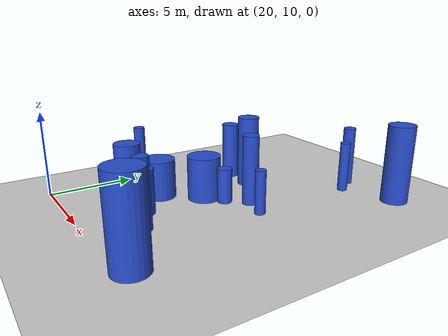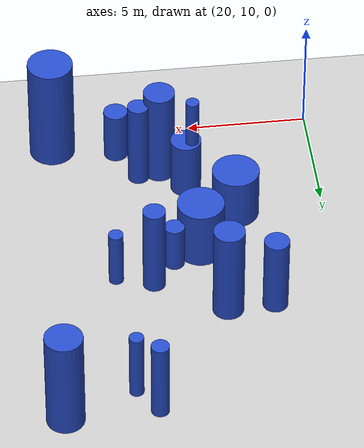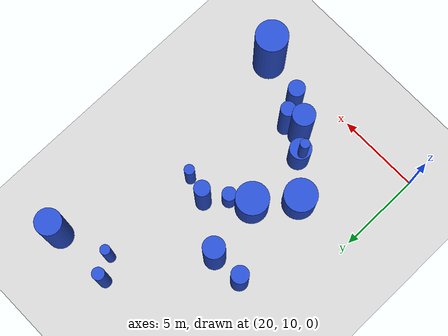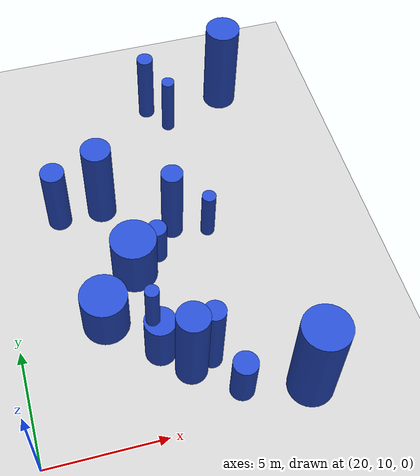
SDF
<sdf version="1.6">
 <world name="default">
  <model name="ground_plane">
   <static>1</static>
   <link name="link">
    <collision name="collision">
     <geometry><plane><normal>0 0 1</normal><size>100 100</size></plane></geometry>
     <surface><friction><ode><mu>100</mu><mu2>50</mu2></ode></friction></surface>
    </collision>
    <visual name="visual">
     <cast_shadows>0</cast_shadows>
     <geometry><plane><normal>0 0 1</normal><size>100 100</size></plane></geometry>
     <material>
      <script><uri>file://media/materials/scripts/gazebo.material</uri><name>Gazebo/Grey</name></script>
     </material>
    </visual>
   </link>
  </model>
  <model name="22">
   <static>0</static>
   <link name="link">
    <inertial>
     <mass>2</mass>
     <inertia><ixx>3.25357</ixx><ixy>0</ixy><ixz>0</ixz><iyy>3.25357</iyy><iyz>0</iyz><izz>0.409144</izz></inertia>
    </inertial>
    <collision name="collision">
     <geometry><cylinder><length>4.27715</length><radius>0.639643</radius></cylinder></geometry>
     <surface><contact><collide_without_contact>1</collide_without_contact></contact></surface>
    </collision>
    <visual name="visual">
     <geometry><cylinder><length>4.27715</length><radius>0.639643</radius></cylinder></geometry>
     <material>
      <script><uri>file://media/materials/scripts/gazebo.material</uri><name>Gazebo/Blue</name></script>
     </material>
    </visual>
    <gravity>0</gravity>
   </link>
   <pose>24.6833 21.1514 2.13857 0 -0 0</pose>
  </model>
  <model name="26">
   <static>0</static>
   <link name="link">
    <inertial>
     <mass>2</mass>
     <inertia><ixx>1.59022</ixx><ixy>0</ixy><ixz>0</ixz><iyy>1.59022</iyy><iyz>0</iyz><izz>0.948667</izz></inertia>
    </inertial>
    <collision name="collision">
     <geometry><cylinder><length>2.58753</length><radius>0.973996</radius></cylinder></geometry>
     <surface><contact><collide_without_contact>1</collide_without_contact></contact></surface>
    </collision>
    <visual name="visual">
     <geometry><cylinder><length>2.58753</length><radius>0.973996</radius></cylinder></geometry>
     <material>
      <script><uri>file://media/materials/scripts/gazebo.material</uri><name>Gazebo/Blue</name></script>
     </material>
    </visual>
    <gravity>0</gravity>
   </link>
   <pose>25.3744 17.5495 1.29377 0 -0 0</pose>
  </model>
  <model name="30">
   <static>0</static>
   <link name="link">
    <inertial>
     <mass>2</mass>
     <inertia><ixx>1.36472</ixx><ixy>0</ixy><ixz>0</ixz><iyy>1.36472</iyy><iyz>0</iyz><izz>0.964605</izz></inertia>
    </inertial>
    <collision name="collision">
     <geometry><cylinder><length>2.30098</length><radius>0.982143</radius></cylinder></geometry>
     <surface><contact><collide_without_contact>1</collide_without_contact></contact></surface>
    </collision>
    <visual name="visual">
     <geometry><cylinder><length>2.30098</length><radius>0.982143</radius></cylinder></geometry>
     <material>
      <script><uri>file://media/materials/scripts/gazebo.material</uri><name>Gazebo/Blue</name></script>
     </material>
    </visual>
    <gravity>0</gravity>
   </link>
   <pose>23.6658 15.4375 1.15049 0 -0 0</pose>
  </model>
  <model name="35">
   <static>0</static>
   <link name="link">
    <inertial>
     <mass>2</mass>
     <inertia>
      <ixx>1.09122</ixx>
      <ixy>0</ixy>
      <ixz>0</ixz>
      <iyy>1.09122</iyy>
      <iyz>0</iyz>
      <izz>0.0932913</izz>
     </inertia>
    </inertial>
    <collision name="collision">
     <geometry><cylinder><length>2.50348</length><radius>0.305436</radius></cylinder></geometry>
     <surface><contact><collide_without_contact>1</collide_without_contact></contact></surface>
    </collision>
    <visual name="visual">
     <geometry><cylinder><length>2.50348</length><radius>0.305436</radius></cylinder></geometry>
     <material>
      <script><uri>file://media/materials/scripts/gazebo.material</uri><name>Gazebo/Blue</name></script>
     </material>
    </visual>
    <gravity>0</gravity>
   </link>
   <pose>28.9997 18.9307 1.25174 0 -0 0</pose>
  </model>
  <model name="40">
   <static>0</static>
   <link name="link">
    <inertial>
     <mass>2</mass>
     <inertia><ixx>2.77857</ixx><ixy>0</ixy><ixz>0</ixz><iyy>2.77857</iyy><iyz>0</iyz><izz>0.218702</izz></inertia>
    </inertial>
    <collision name="collision">
     <geometry><cylinder><length>4.00191</length><radius>0.467656</radius></cylinder></geometry>
     <surface><contact><collide_without_contact>1</collide_without_contact></contact></surface>
    </collision>
    <visual name="visual">
     <geometry><cylinder><length>4.00191</length><radius>0.467656</radius></cylinder></geometry>
     <material>
      <script><uri>file://media/materials/scripts/gazebo.material</uri><name>Gazebo/Blue</name></script>
     </material>
    </visual>
    <gravity>0</gravity>
   </link>
   <pose>27.4866 19.3515 2.00096 0 -0 0</pose>
  </model>
  <model name="83">
   <static>0</static>
   <link name="link">
    <inertial>
     <mass>2</mass>
     <inertia><ixx>2.13267</ixx><ixy>0</ixy><ixz>0</ixz><iyy>2.13267</iyy><iyz>0</iyz><izz>0.266317</izz></inertia>
    </inertial>
    <collision name="collision">
     <geometry><cylinder><length>3.46367</length><radius>0.516059</radius></cylinder></geometry>
     <surface><contact><collide_without_contact>1</collide_without_contact></contact></surface>
    </collision>
    <visual name="visual">
     <geometry><cylinder><length>3.46367</length><radius>0.516059</radius></cylinder></geometry>
     <material>
      <script><uri>file://media/materials/scripts/gazebo.material</uri><name>Gazebo/Blue</name></script>
     </material>
    </visual>
    <gravity>0</gravity>
   </link>
   <pose>22.7544 21.0733 1.73184 0 -0 0</pose>
  </model>
  <model name="93">
   <static>0</static>
   <link name="link">
    <inertial>
     <mass>2</mass>
     <inertia><ixx>2.18353</ixx><ixy>0</ixy><ixz>0</ixz><iyy>2.18353</iyy><iyz>0</iyz><izz>0.134024</izz></inertia>
    </inertial>
    <collision name="collision">
     <geometry><cylinder><length>3.56358</length><radius>0.366093</radius></cylinder></geometry>
     <surface><contact><collide_without_contact>1</collide_without_contact></contact></surface>
    </collision>
    <visual name="visual">
     <geometry><cylinder><length>3.56358</length><radius>0.366093</radius></cylinder></geometry>
     <material>
      <script><uri>file://media/materials/scripts/gazebo.material</uri><name>Gazebo/Blue</name></script>
     </material>
    </visual>
    <gravity>0</gravity>
   </link>
   <pose>28.0487 26.4916 1.78179 0 -0 0</pose>
  </model>
  <model name="131">
   <static>0</static>
   <link name="link">
    <inertial>
     <mass>2</mass>
     <inertia><ixx>1.30772</ixx><ixy>0</ixy><ixz>0</ixz><iyy>1.30772</iyy><iyz>0</iyz><izz>0.4134</izz></inertia>
    </inertial>
    <collision name="collision">
     <geometry><cylinder><length>2.57024</length><radius>0.642962</radius></cylinder></geometry>
     <surface><contact><collide_without_contact>1</collide_without_contact></contact></surface>
    </collision>
    <visual name="visual">
     <geometry><cylinder><length>2.57024</length><radius>0.642962</radius></cylinder></geometry>
     <material>
      <script><uri>file://media/materials/scripts/gazebo.material</uri><name>Gazebo/Blue</name></script>
     </material>
    </visual>
    <gravity>0</gravity>
   </link>
   <pose>25.5249 13.6277 1.28512 0 -0 0</pose>
  </model>
  <model name="133">
   <static>0</static>
   <link name="link">
    <inertial>
     <mass>2</mass>
     <inertia><ixx>2.65468</ixx><ixy>0</ixy><ixz>0</ixz><iyy>2.65468</iyy><iyz>0</iyz><izz>0.197735</izz></inertia>
    </inertial>
    <collision name="collision">
     <geometry><cylinder><length>3.91597</length><radius>0.444674</radius></cylinder></geometry>
     <surface><contact><collide_without_contact>1</collide_without_contact></contact></surface>
    </collision>
    <visual name="visual">
     <geometry><cylinder><length>3.91597</length><radius>0.444674</radius></cylinder></geometry>
     <material>
      <script><uri>file://media/materials/scripts/gazebo.material</uri><name>Gazebo/Blue</name></script>
     </material>
    </visual>
    <gravity>0</gravity>
   </link>
   <pose>27.4263 12.8234 1.95799 0 -0 0</pose>
  </model>
  <model name="141">
   <static>0</static>
   <link name="link">
    <inertial>
     <mass>2</mass>
     <inertia>
      <ixx>0.773371</ixx>
      <ixy>0</ixy>
      <ixz>0</ixz>
      <iyy>0.773371</iyy>
      <iyz>0</iyz>
      <izz>0.17741</izz>
     </inertia>
    </inertial>
    <collision name="collision">
     <geometry><cylinder><length>2.02682</length><radius>0.421201</radius></cylinder></geometry>
     <surface><contact><collide_without_contact>1</collide_without_contact></contact></surface>
    </collision>
    <visual name="visual">
     <geometry><cylinder><length>2.02682</length><radius>0.421201</radius></cylinder></geometry>
     <material>
      <script><uri>file://media/materials/scripts/gazebo.material</uri><name>Gazebo/Blue</name></script>
     </material>
    </visual>
    <gravity>0</gravity>
   </link>
   <pose>26.534 18.2207 1.01341 0 -0 0</pose>
  </model>
  <model name="161">
   <static>0</static>
   <link name="link">
    <inertial>
     <mass>2</mass>
     <inertia><ixx>1.04062</ixx><ixy>0</ixy><ixz>0</ixz><iyy>1.04062</iyy><iyz>0</iyz><izz>0.257795</izz></inertia>
    </inertial>
    <collision name="collision">
     <geometry><cylinder><length>2.33887</length><radius>0.507735</radius></cylinder></geometry>
     <surface><contact><collide_without_contact>1</collide_without_contact></contact></surface>
    </collision>
    <visual name="visual">
     <geometry><cylinder><length>2.33887</length><radius>0.507735</radius></cylinder></geometry>
     <material>
      <script><uri>file://media/materials/scripts/gazebo.material</uri><name>Gazebo/Blue</name></script>
     </material>
    </visual>
    <gravity>0</gravity>
   </link>
   <pose>28.2179 11.2291 1.16943 0 -0 0</pose>
  </model>
  <model name="179">
   <static>0</static>
   <link name="link">
    <inertial>
     <mass>2</mass>
     <inertia>
      <ixx>3.76703</ixx>
      <ixy>0</ixy>
      <ixz>0</ixz>
      <iyy>3.76703</iyy>
      <iyz>0</iyz>
      <izz>0.0770353</izz>
     </inertia>
    </inertial>
    <collision name="collision">
     <geometry><cylinder><length>4.72981</length><radius>0.277552</radius></cylinder></geometry>
     <surface><contact><collide_without_contact>1</collide_without_contact></contact></surface>
    </collision>
    <visual name="visual">
     <geometry><cylinder><length>4.72981</length><radius>0.277552</radius></cylinder></geometry>
     <material>
      <script><uri>file://media/materials/scripts/gazebo.material</uri><name>Gazebo/Blue</name></script>
     </material>
    </visual>
    <gravity>0</gravity>
   </link>
   <pose>25.2744 13.7542 2.3649 0 -0 0</pose>
  </model>
  <model name="189">
   <static>0</static>
   <link name="link">
    <inertial>
     <mass>2</mass>
     <inertia><ixx>3.66883</ixx><ixy>0</ixy><ixz>0</ixz><iyy>3.66883</iyy><iyz>0</iyz><izz>0.588744</izz></inertia>
    </inertial>
    <collision name="collision">
     <geometry><cylinder><length>4.49964</length><radius>0.767297</radius></cylinder></geometry>
     <surface><contact><collide_without_contact>1</collide_without_contact></contact></surface>
    </collision>
    <visual name="visual">
     <geometry><cylinder><length>4.49964</length><radius>0.767297</radius></cylinder></geometry>
     <material>
      <script><uri>file://media/materials/scripts/gazebo.material</uri><name>Gazebo/Blue</name></script>
     </material>
    </visual>
    <gravity>0</gravity>
   </link>
   <pose>31.7734 26.5476 2.24982 0 -0 0</pose>
  </model>
  <model name="226">
   <static>0</static>
   <link name="link">
    <inertial>
     <mass>2</mass>
     <inertia>
      <ixx>1.53462</ixx>
      <ixy>0</ixy>
      <ixz>0</ixz>
      <iyy>1.53462</iyy>
      <iyz>0</iyz>
      <izz>0.0871782</izz>
     </inertia>
    </inertial>
    <collision name="collision">
     <geometry><cylinder><length>2.99101</length><radius>0.29526</radius></cylinder></geometry>
     <surface><contact><collide_without_contact>1</collide_without_contact></contact></surface>
    </collision>
    <visual name="visual">
     <geometry><cylinder><length>2.99101</length><radius>0.29526</radius></cylinder></geometry>
     <material>
      <script><uri>file://media/materials/scripts/gazebo.material</uri><name>Gazebo/Blue</name></script>
     </material>
    </visual>
    <gravity>0</gravity>
   </link>
   <pose>28.8541 25.3477 1.49551 0 -0 0</pose>
  </model>
  <model name="227">
   <static>0</static>
   <link name="link">
    <inertial>
     <mass>2</mass>
     <inertia><ixx>3.36596</ixx><ixy>0</ixy><ixz>0</ixz><iyy>3.36596</iyy><iyz>0</iyz><izz>0.434671</izz></inertia>
    </inertial>
    <collision name="collision">
     <geometry><cylinder><length>4.34647</length><radius>0.659296</radius></cylinder></geometry>
     <surface><contact><collide_without_contact>1</collide_without_contact></contact></surface>
    </collision>
    <visual name="visual">
     <geometry><cylinder><length>4.34647</length><radius>0.659296</radius></cylinder></geometry>
     <material>
      <script><uri>file://media/materials/scripts/gazebo.material</uri><name>Gazebo/Blue</name></script>
     </material>
    </visual>
    <gravity>0</gravity>
   </link>
   <pose>26.5161 12.5519 2.17323 0 -0 0</pose>
  </model>
  <model name="243">
   <static>0</static>
   <link name="link">
    <inertial>
     <mass>2</mass>
     <inertia><ixx>4.24812</ixx><ixy>0</ixy><ixz>0</ixz><iyy>4.24812</iyy><iyz>0</iyz><izz>0.909035</izz></inertia>
    </inertial>
    <collision name="collision">
     <geometry><cylinder><length>4.77091</length><radius>0.953433</radius></cylinder></geometry>
     <surface><contact><collide_without_contact>1</collide_without_contact></contact></surface>
    </collision>
    <visual name="visual">
     <geometry><cylinder><length>4.77091</length><radius>0.953433</radius></cylinder></geometry>
     <material>
      <script><uri>file://media/materials/scripts/gazebo.material</uri><name>Gazebo/Blue</name></script>
     </material>
    </visual>
    <gravity>0</gravity>
   </link>
   <pose>30.8804 10.7206 2.38546 0 -0 0</pose>
  </model>
 </world>
</sdf>
